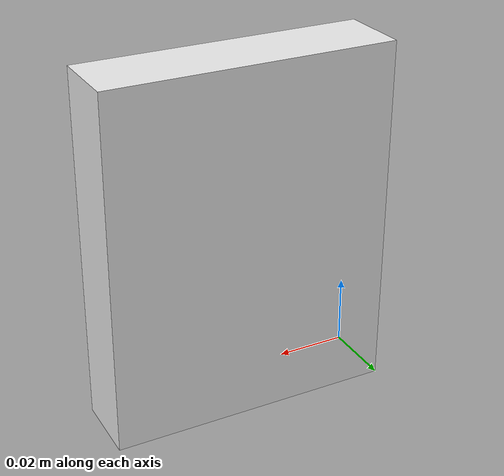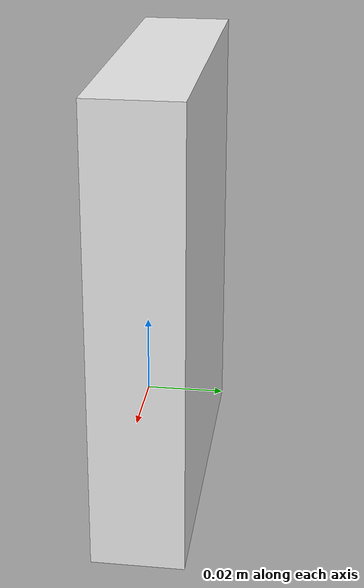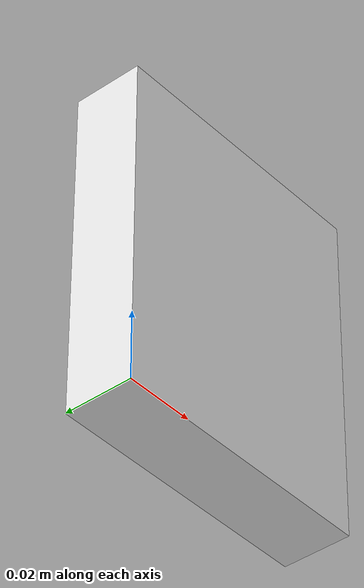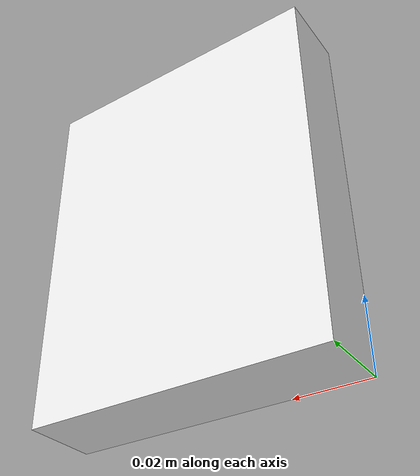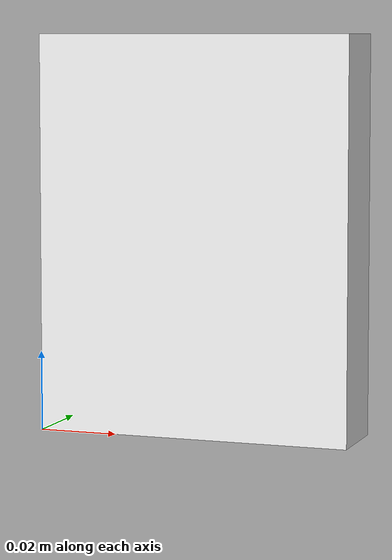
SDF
<?xml version="1.0" ?>
<sdf version="1.6">
  <model name="uwb_twr_anchor999">
    <static>true</static>
    <link name="uwb_twr_999_link">
      <pose>0 0.0 0.0 0 0 0</pose>
      <visual name="uwb_twr_999_visual">
        <pose>0.04 0.01 0.05 0 0 0</pose>
        <geometry>
          <box>
            <size>0.08 0.02 0.1</size>
          </box>
        </geometry>
        <material>
          <script>
            <name>Gazebo/White</name>
            <uri>file://media/materials/scripts/gazebo.material</uri>
          </script>
        </material>
      </visual>
      <collision name="uwb_twr_999_collision">
        <pose>0.04 0.01 0.05 0 0 0</pose>
        <geometry>
          <box>
            <size>0.08 0.02 0.1</size>
          </box>
        </geometry>
        <surface>
          <contact>
            <ode>
              <min_depth>0.01</min_depth>
              <max_vel>0.0</max_vel>
            </ode>
          </contact>
          <friction>
            <ode/>
          </friction>
        </surface>
      </collision>
    </link>
    <plugin name="uwb_twr_999_plugin" filename="libMrsGazeboCommonResources_RosUwbTwrPlugin.so">
      <twrRate>10</twrRate>
      <twrTopic>/anchor1/uwb_twr</twrTopic>
      <deviceId>999</deviceId>
      <linkPrefix>uwb_twr</linkPrefix>
      <antenna_offset_x>0.03</antenna_offset_x>
      <antenna_offset_y>0.008</antenna_offset_y>
      <antenna_offset_z>0.1</antenna_offset_z>
      <allBeaconsAreLOS>0</allBeaconsAreLOS>
      <verbose>0</verbose>
      <useRoundRobin>1</useRoundRobin>
    </plugin>
  </model>
</sdf>
